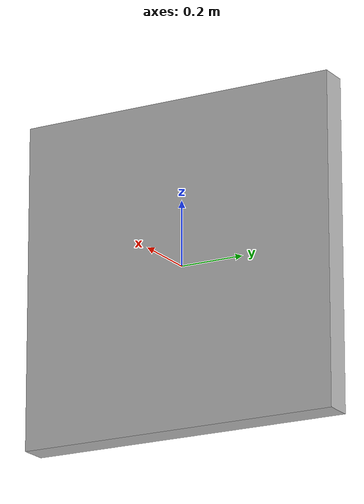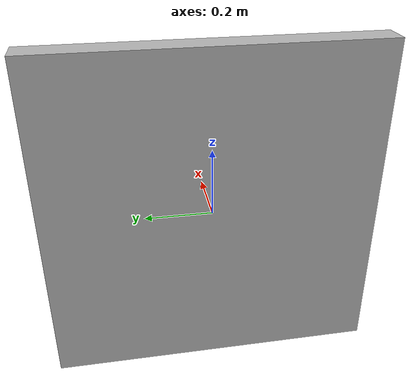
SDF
<?xml version="1.0" ?>
<sdf version="1.5">
  <model name="Slow Sign">
    <static>true</static>
    <link name="link">
      <collision name="collision">

        <geometry>
          <mesh>
            <uri>model://slow_sign/meshes/slow_sign.dae</uri>
          </mesh>
        </geometry>
        <scale>0.5 0.5 0.5</scale>
      </collision>
      <visual name="visual">

        <geometry>
          <mesh>
            <uri>model://slow_sign/meshes/slow_sign.dae</uri>
          </mesh>
        </geometry>
        <scale>0.5 0.5 0.5</scale>
      </visual>
    </link>
  </model>
</sdf>
